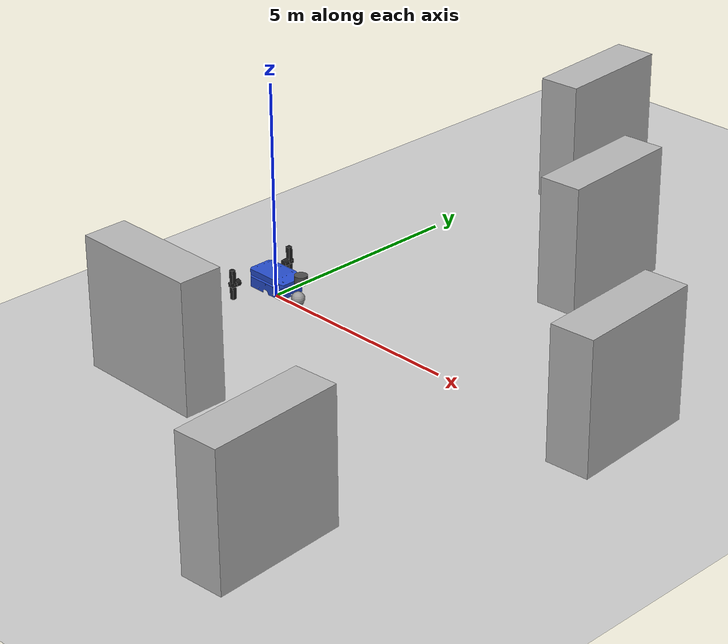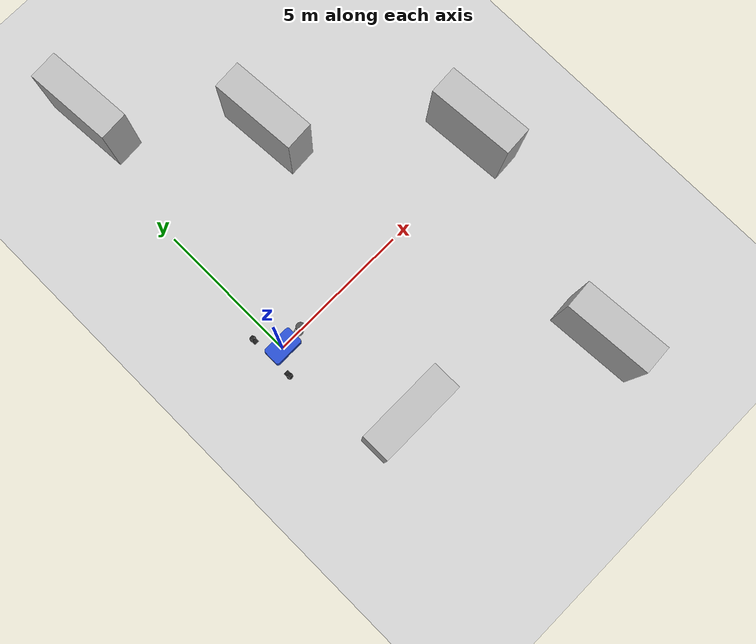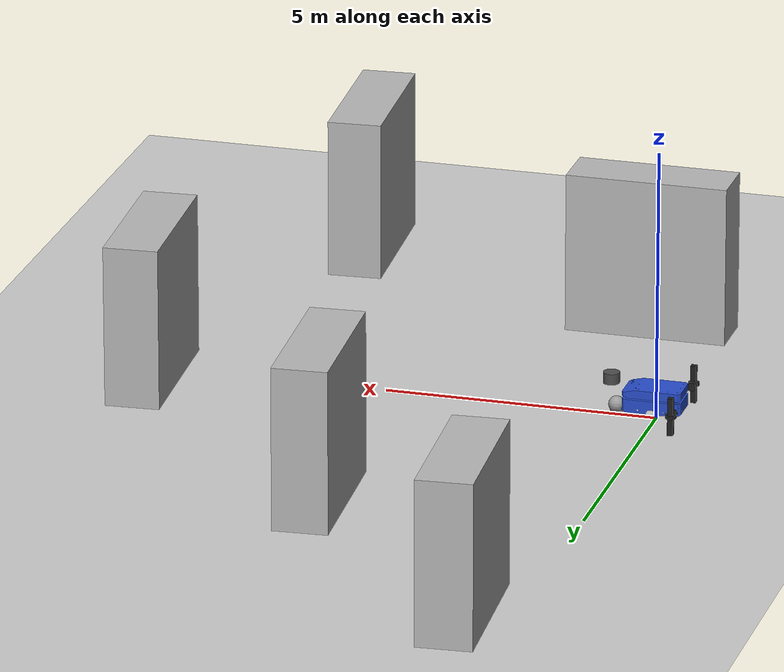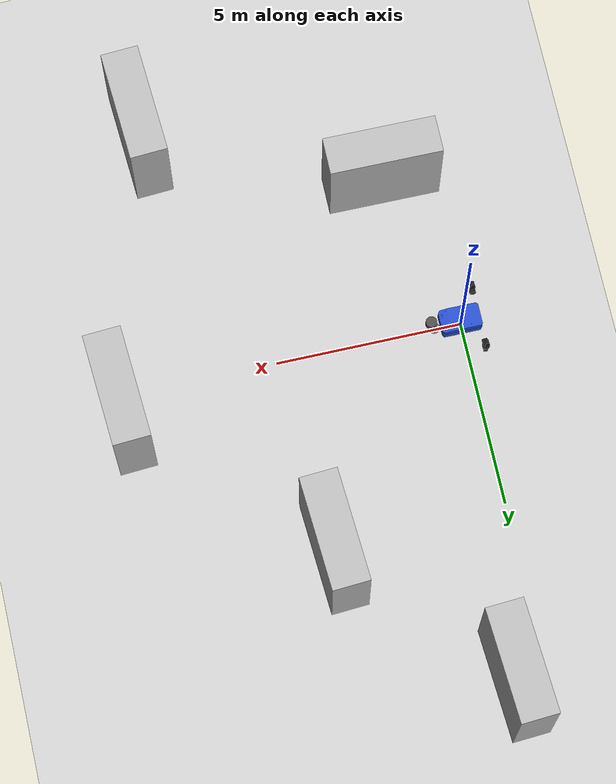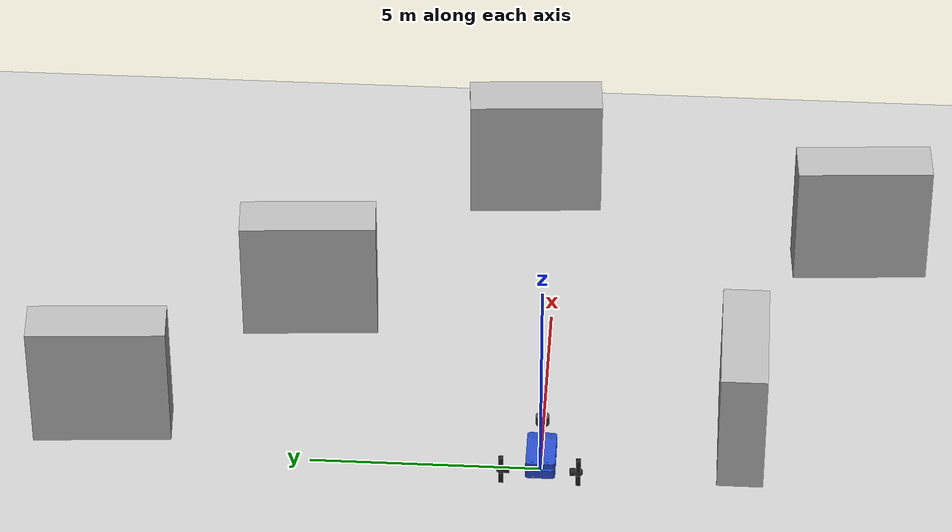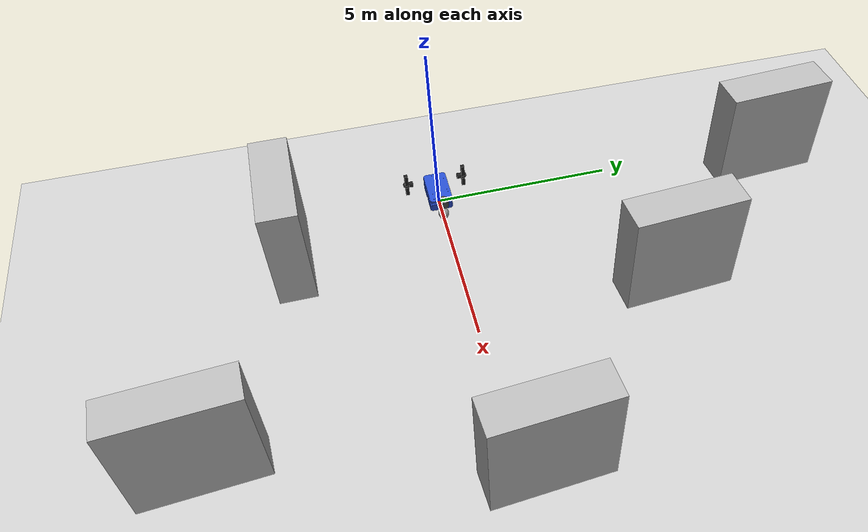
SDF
<sdf version="1.7">
 <world name="default">
  <light name="sun" type="directional">
   <pose>0 0 10 0 -0 0</pose>
   <diffuse>0.8 0.8 0.8 1</diffuse>
   <specular>0.2 0.2 0.2 1</specular>
   <attenuation>
    <range>1000</range>
    <constant>0.9</constant>
    <linear>0.01</linear>
    <quadratic>0.001</quadratic>
   </attenuation>
   <direction>-0.5 0.1 -0.9</direction>
   <spot><inner_angle>0</inner_angle><outer_angle>0</outer_angle><falloff>0</falloff></spot>
  </light>
  <model name="ground_plane">
   <static>1</static>
   <link name="link">
    <collision name="collision">
     <geometry><plane><normal>0 0 1</normal><size>100 100</size></plane></geometry>
     <surface>
      <contact><collide_bitmask>65535</collide_bitmask></contact>
      <friction><ode><mu>100</mu><mu2>50</mu2></ode></friction>
     </surface>
    </collision>
    <visual name="visual">
     <cast_shadows>0</cast_shadows>
     <geometry><plane><normal>0 0 1</normal><size>100 100</size></plane></geometry>
     <material>
      <script><uri>file://media/materials/scripts/gazebo.material</uri><name>Gazebo/Grey</name></script>
     </material>
    </visual>
   </link>
  </model>
  <gravity>0 0 -9.8</gravity>
  <magnetic_field>6e-06 2.3e-05 -4.2e-05</magnetic_field>
  <atmosphere type="adiabatic"/>
  <physics type="ode">
   <max_step_size>0.001</max_step_size>
   <real_time_factor>1</real_time_factor>
   <real_time_update_rate>1000</real_time_update_rate>
  </physics>
  <scene><ambient>0.4 0.4 0.4 1</ambient><background>0.7 0.7 0.7 1</background><shadows>1</shadows></scene>
  <spherical_coordinates>
   <surface_model>EARTH_WGS84</surface_model>
   <latitude_deg>0</latitude_deg>
   <longitude_deg>0</longitude_deg>
   <elevation>0</elevation>
   <heading_deg>0</heading_deg>
  </spherical_coordinates>
  <model name="brick_box_3x1x3">
   <static>1</static>
   <link name="chassis">
    <pose>0 0 1.5 0 -0 0</pose>
    <collision name="collision"><geometry><box><size>3 1 3</size></box></geometry></collision>
    <visual name="visual">
     <geometry><mesh><uri>model://brick_box_3x1x3/meshes/simple_box.dae</uri><scale>3 1 3</scale></mesh></geometry>
     <material>
      <script>
       <uri>model://brick_box_3x1x3/materials/scripts</uri>
       <uri>model://brick_box_3x1x3/materials/textures</uri>
       <name>BrickBox/Diffuse</name>
      </script>
     </material>
    </visual>
   </link>
   <pose>1.21013 -4.30041 0 0 -0 0</pose>
  </model>
  <model name="my_robot">
   <link name="link_chassis">
    <inertial>
     <pose>0 0 0.3 0 -0 0</pose>
     <mass>10</mass>
     <inertia><ixx>1.5417</ixx><ixy>0</ixy><ixz>0</ixz><iyy>3.467</iyy><iyz>0</iyz><izz>4.742</izz></inertia>
    </inertial>
    <collision name="link_chassis_collision">
     <geometry>
      <mesh><scale>1 1 1</scale><uri>/home/minc/catkin_ws/src/robot_description/meshes/chassis.stl</uri></mesh>
     </geometry>
    </collision>
    <visual name="link_chassis_visual">
     <geometry>
      <mesh><scale>1 1 1</scale><uri>/home/minc/catkin_ws/src/robot_description/meshes/chassis.stl</uri></mesh>
     </geometry>
     <material>
      <script><name>Gazebo/Blue</name><uri>file://media/materials/scripts/gazebo.material</uri></script>
     </material>
    </visual>
   </link>
   <joint name="joint_chassis_left_wheel" type="revolute">
    <pose relative_to="link_chassis">-0.5 0.65 0 0 -0 0</pose>
    <parent>link_chassis</parent>
    <child>link_left_wheel</child>
    <axis>
     <xyz>0 1 0</xyz>
     <limit><effort>10000</effort><velocity>1000</velocity><lower>-1e+16</lower><upper>1e+16</upper></limit>
     <dynamics><spring_reference>0</spring_reference><spring_stiffness>0</spring_stiffness></dynamics>
    </axis>
   </joint>
   <link name="link_left_wheel">
    <pose relative_to="joint_chassis_left_wheel">0 0 0 0 -0 0</pose>
    <inertial>
     <mass>1</mass>
     <inertia>
      <ixx>0.00252667</ixx>
      <ixy>0</ixy>
      <ixz>0</ixz>
      <iyy>0.00252667</iyy>
      <iyz>0</iyz>
      <izz>0.005</izz>
     </inertia>
    </inertial>
    <collision name="link_left_wheel_collision">
     <pose>0 0.18 0 1.5708 -0 0</pose>
     <geometry>
      <mesh><scale>1 1 1</scale><uri>/home/minc/catkin_ws/src/robot_description/meshes/wheel.stl</uri></mesh>
     </geometry>
     <surface><friction><ode><mu>0.2</mu><mu2>0.2</mu2></ode></friction></surface>
    </collision>
    <collision name="link_left_wheel_collision_1">
     <pose>0 0.06 0 1.5708 -0 0</pose>
     <geometry><cylinder><length>0.12</length><radius>0.08</radius></cylinder></geometry>
     <surface><friction><ode><mu>0.2</mu><mu2>0.2</mu2></ode></friction></surface>
    </collision>
    <visual name="link_left_wheel_visual">
     <pose>0 0.18 0 1.5708 -0 0</pose>
     <geometry>
      <mesh><scale>1 1 1</scale><uri>/home/minc/catkin_ws/src/robot_description/meshes/wheel.stl</uri></mesh>
     </geometry>
     <material>
      <script><name>Gazebo/Black</name><uri>file://media/materials/scripts/gazebo.material</uri></script>
     </material>
    </visual>
    <visual name="link_left_wheel_visual_1">
     <pose>0 0.18 0 0 -0 0</pose>
     <geometry><box><size>0.1 0.1 0.7</size></box></geometry>
     <material>
      <script><name>Gazebo/Black</name><uri>file://media/materials/scripts/gazebo.material</uri></script>
     </material>
    </visual>
    <visual name="link_left_wheel_visual_2">
     <pose>0 0.06 0 1.5708 -0 0</pose>
     <geometry><cylinder><length>0.12</length><radius>0.08</radius></cylinder></geometry>
     <material>
      <script><name>Gazebo/Black</name><uri>file://media/materials/scripts/gazebo.material</uri></script>
     </material>
    </visual>
   </link>
   <joint name="joint_chassis_right_wheel" type="revolute">
    <pose relative_to="link_chassis">-0.5 -0.65 0 0 -0 0</pose>
    <parent>link_chassis</parent>
    <child>link_right_wheel</child>
    <axis>
     <xyz>0 1 0</xyz>
     <limit><effort>10000</effort><velocity>1000</velocity><lower>-1e+16</lower><upper>1e+16</upper></limit>
     <dynamics><spring_reference>0</spring_reference><spring_stiffness>0</spring_stiffness></dynamics>
    </axis>
   </joint>
   <link name="link_right_wheel">
    <pose relative_to="joint_chassis_right_wheel">0 0 0 0 -0 0</pose>
    <inertial>
     <mass>1</mass>
     <inertia>
      <ixx>0.00252667</ixx>
      <ixy>0</ixy>
      <ixz>0</ixz>
      <iyy>0.00252667</iyy>
      <iyz>0</iyz>
      <izz>0.005</izz>
     </inertia>
    </inertial>
    <collision name="link_right_wheel_collision">
     <pose>0 -0.18 0 1.5708 -0 0</pose>
     <geometry>
      <mesh><scale>1 1 1</scale><uri>/home/minc/catkin_ws/src/robot_description/meshes/wheel.stl</uri></mesh>
     </geometry>
     <surface><friction><ode><mu>0.2</mu><mu2>0.2</mu2></ode></friction></surface>
    </collision>
    <collision name="link_right_wheel_collision_1">
     <pose>0 -0.06 0 1.5708 -0 0</pose>
     <geometry><cylinder><length>0.12</length><radius>0.08</radius></cylinder></geometry>
     <surface><friction><ode><mu>0.2</mu><mu2>0.2</mu2></ode></friction></surface>
    </collision>
    <visual name="link_right_wheel_visual">
     <pose>0 -0.18 0 1.5708 -0 0</pose>
     <geometry>
      <mesh><scale>1 1 1</scale><uri>/home/minc/catkin_ws/src/robot_description/meshes/wheel.stl</uri></mesh>
     </geometry>
     <material>
      <script><name>Gazebo/Black</name><uri>file://media/materials/scripts/gazebo.material</uri></script>
     </material>
    </visual>
    <visual name="link_right_wheel_visual_1">
     <pose>0 -0.18 0 0 -0 0</pose>
     <geometry><box><size>0.1 0.1 0.7</size></box></geometry>
     <material>
      <script><name>Gazebo/Black</name><uri>file://media/materials/scripts/gazebo.material</uri></script>
     </material>
    </visual>
    <visual name="link_right_wheel_visual_2">
     <pose>0 -0.06 0 1.5708 -0 0</pose>
     <geometry><cylinder><length>0.12</length><radius>0.08</radius></cylinder></geometry>
     <material>
      <script><name>Gazebo/Black</name><uri>file://media/materials/scripts/gazebo.material</uri></script>
     </material>
    </visual>
   </link>
   <joint name="joint_laser_scan_chassis" type="fixed">
    <pose relative_to="link_chassis">0.8 0 0.3 0 -0 0</pose>
    <parent>link_chassis</parent>
    <child>link_laser_scan</child>
    <axis>
     <dynamics><spring_reference>0</spring_reference><spring_stiffness>0</spring_stiffness></dynamics>
     <xyz>0 0 1</xyz>
     <limit><lower>-1e+16</lower><upper>1e+16</upper></limit>
    </axis>
    <physics><ode><limit><cfm>0</cfm><erp>0.2</erp></limit></ode></physics>
   </joint>
   <link name="link_laser_scan">
    <pose relative_to="joint_laser_scan_chassis">0 0 0 0 -0 0</pose>
    <inertial>
     <mass>0.5</mass>
     <inertia>
      <ixx>0.000252667</ixx>
      <ixy>0</ixy>
      <ixz>0</ixz>
      <iyy>0.000252667</iyy>
      <iyz>0</iyz>
      <izz>0.0005</izz>
     </inertia>
    </inertial>
    <collision name="link_laser_scan_collision">
     <geometry><cylinder><length>0.2</length><radius>0.15</radius></cylinder></geometry>
    </collision>
    <visual name="link_laser_scan_visual">
     <geometry><cylinder><length>0.2</length><radius>0.15</radius></cylinder></geometry>
     <material>
      <script><name>Gazebo/DarkGrey</name><uri>file://media/materials/scripts/gazebo.material</uri></script>
     </material>
    </visual>
    <sensor name="head_hokuyo_sensor" type="ray">
     <visualize>1</visualize>
     <update_rate>20</update_rate>
     <ray>
      <scan>
       <horizontal>
        <samples>720</samples>
        <resolution>1</resolution>
        <min_angle>-1.5708</min_angle>
        <max_angle>1.5708</max_angle>
       </horizontal>
       <vertical><samples>1</samples><min_angle>0</min_angle><max_angle>0</max_angle></vertical>
      </scan>
      <range><min>0.2</min><max>10</max><resolution>0.01</resolution></range>
      <noise><type>gaussian</type><mean>0</mean><stddev>0.01</stddev></noise>
     </ray>
     <plugin name="gazebo_ros_head_hokuyo_controller" filename="libgazebo_ros_laser.so">
      <topicName>/laser/scan</topicName>
      <frameName>sensor_laser</frameName>
      <robotNamespace>/</robotNamespace>
     </plugin>
    </sensor>
   </link>
   <joint name="joint_spherical_wheel" type="fixed">
    <pose relative_to="link_chassis">0.7 0 -0.15 0 -0 0</pose>
    <parent>link_chassis</parent>
    <child>link_spherical_wheel</child>
    <axis>
     <dynamics><spring_reference>0</spring_reference><spring_stiffness>0</spring_stiffness></dynamics>
     <xyz>0 0 1</xyz>
     <limit><lower>-1e+16</lower><upper>1e+16</upper></limit>
    </axis>
    <physics><ode><limit><cfm>0</cfm><erp>0.2</erp></limit></ode></physics>
   </joint>
   <link name="link_spherical_wheel">
    <pose relative_to="joint_spherical_wheel">0 0 0 0 -0 0</pose>
    <inertial>
     <mass>1</mass>
     <inertia>
      <ixx>0.00252667</ixx>
      <ixy>0</ixy>
      <ixz>0</ixz>
      <iyy>0.00252667</iyy>
      <iyz>0</iyz>
      <izz>0.005</izz>
     </inertia>
    </inertial>
    <collision name="link_spherical_wheel_collision">
     <pose>0 0 -0.125 0 -0 0</pose>
     <geometry><sphere><radius>0.125</radius></sphere></geometry>
     <surface><friction><ode><mu>0</mu><mu2>0</mu2></ode></friction></surface>
    </collision>
    <visual name="link_spherical_wheel_visual">
     <pose>0 0 -0.125 0 -0 0</pose>
     <geometry><sphere><radius>0.125</radius></sphere></geometry>
     <material>
      <script><name>Gazebo/Grey</name><uri>file://media/materials/scripts/gazebo.material</uri></script>
     </material>
    </visual>
    <visual name="link_spherical_wheel_visual_1">
     <pose>0 0 -0.05 0 -0 0</pose>
     <geometry><sphere><radius>0.15</radius></sphere></geometry>
     <material>
      <script><name>Gazebo/Grey</name><uri>file://media/materials/scripts/gazebo.material</uri></script>
     </material>
    </visual>
   </link>
   <static>0</static>
   <plugin name="differential_drive_controller" filename="libgazebo_ros_diff_drive.so">
    <alwaysOn>1</alwaysOn>
    <updateRate>20</updateRate>
    <leftJoint>joint_chassis_left_wheel</leftJoint>
    <rightJoint>joint_chassis_right_wheel</rightJoint>
    <wheelSeparation>1.66</wheelSeparation>
    <wheelDiameter>0.8</wheelDiameter>
    <torque>10</torque>
    <commandTopic>cmd_vel</commandTopic>
    <odometryTopic>odom</odometryTopic>
    <odometryFrame>odom</odometryFrame>
    <robotBaseFrame>link_chassis</robotBaseFrame>
    <robotNamespace>/</robotNamespace>
   </plugin>
   <pose>0.029754 0.000403 0.399366 0 -0.000467 0.000424</pose>
  </model>
  <model name="brick_box_3x1x3_0">
   <static>1</static>
   <link name="chassis">
    <pose>0 0 1.5 0 -0 0</pose>
    <collision name="collision"><geometry><box><size>3 1 3</size></box></geometry></collision>
    <visual name="visual">
     <geometry><mesh><uri>model://brick_box_3x1x3/meshes/simple_box.dae</uri><scale>3 1 3</scale></mesh></geometry>
     <material>
      <script>
       <uri>model://brick_box_3x1x3/materials/scripts</uri>
       <uri>model://brick_box_3x1x3/materials/textures</uri>
       <name>BrickBox/Diffuse</name>
      </script>
     </material>
    </visual>
   </link>
   <pose>9.21868 0.574788 0 0 0 -1.50577</pose>
  </model>
  <model name="brick_box_3x1x3_0_clone">
   <static>1</static>
   <link name="chassis">
    <pose>0 0 1.5 0 -0 0</pose>
    <collision name="collision"><geometry><box><size>3 1 3</size></box></geometry></collision>
    <visual name="visual">
     <geometry><mesh><uri>model://brick_box_3x1x3/meshes/simple_box.dae</uri><scale>3 1 3</scale></mesh></geometry>
     <material>
      <script>
       <uri>model://brick_box_3x1x3/materials/scripts</uri>
       <uri>model://brick_box_3x1x3/materials/textures</uri>
       <name>BrickBox/Diffuse</name>
      </script>
     </material>
    </visual>
   </link>
   <pose>4.64732 5.38379 0 0 0 -1.50577</pose>
  </model>
  <model name="brick_box_3x1x3_0_clone_0">
   <static>1</static>
   <link name="chassis">
    <pose>0 0 1.5 0 -0 0</pose>
    <collision name="collision"><geometry><box><size>3 1 3</size></box></geometry></collision>
    <visual name="visual">
     <geometry><mesh><uri>model://brick_box_3x1x3/meshes/simple_box.dae</uri><scale>3 1 3</scale></mesh></geometry>
     <material>
      <script>
       <uri>model://brick_box_3x1x3/materials/scripts</uri>
       <uri>model://brick_box_3x1x3/materials/textures</uri>
       <name>BrickBox/Diffuse</name>
      </script>
     </material>
    </visual>
   </link>
   <pose>7.27185 -6.87181 0 0 0 -1.50577</pose>
  </model>
  <model name="brick_box_3x1x3_0_clone_1">
   <static>1</static>
   <link name="chassis">
    <pose>0 0 1.5 0 -0 0</pose>
    <collision name="collision"><geometry><box><size>3 1 3</size></box></geometry></collision>
    <visual name="visual">
     <geometry><mesh><uri>model://brick_box_3x1x3/meshes/simple_box.dae</uri><scale>3 1 3</scale></mesh></geometry>
     <material>
      <script>
       <uri>model://brick_box_3x1x3/materials/scripts</uri>
       <uri>model://brick_box_3x1x3/materials/textures</uri>
       <name>BrickBox/Diffuse</name>
      </script>
     </material>
    </visual>
   </link>
   <pose>0.881706 9.60009 0 0 0 -1.50577</pose>
  </model>
 </world>
</sdf>
